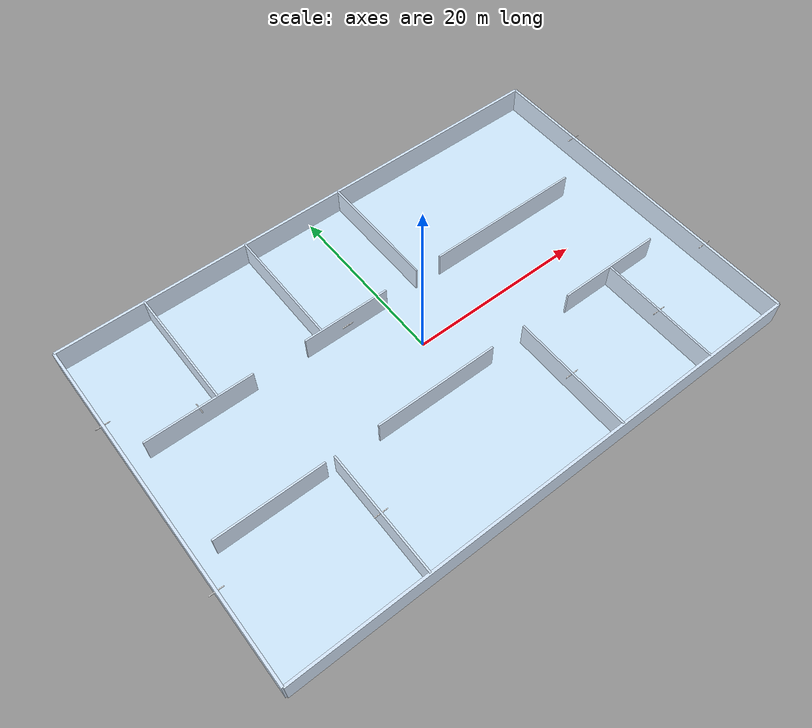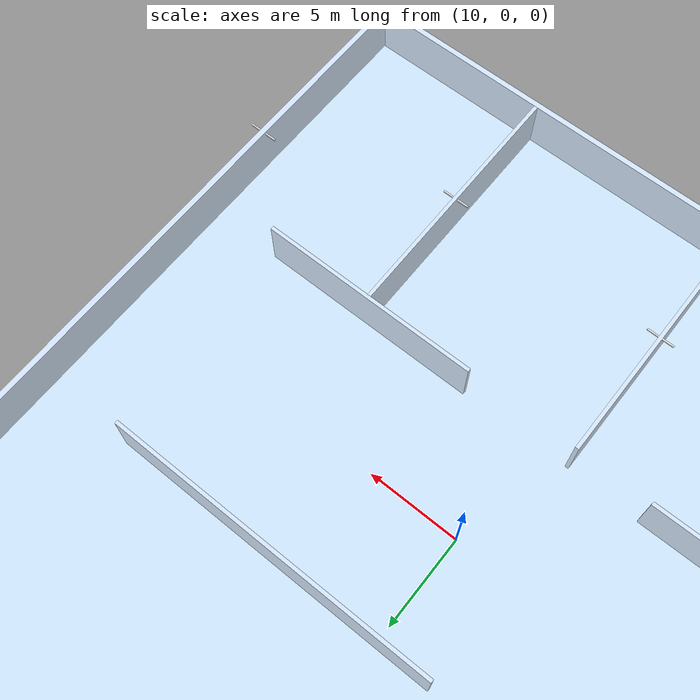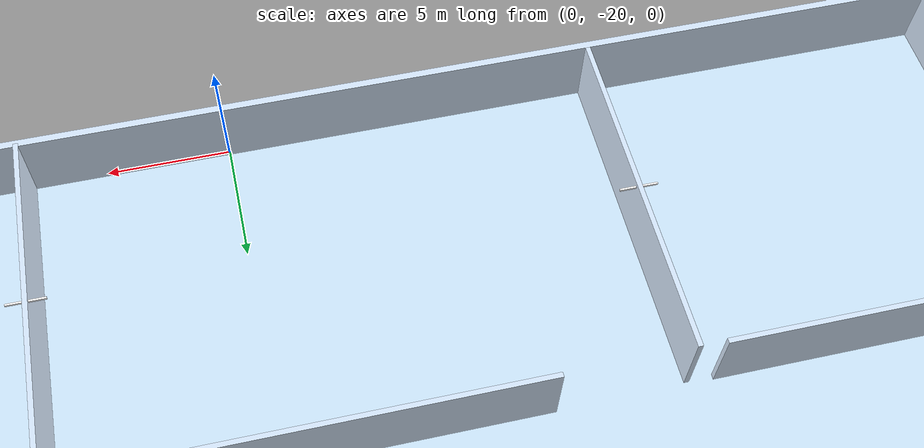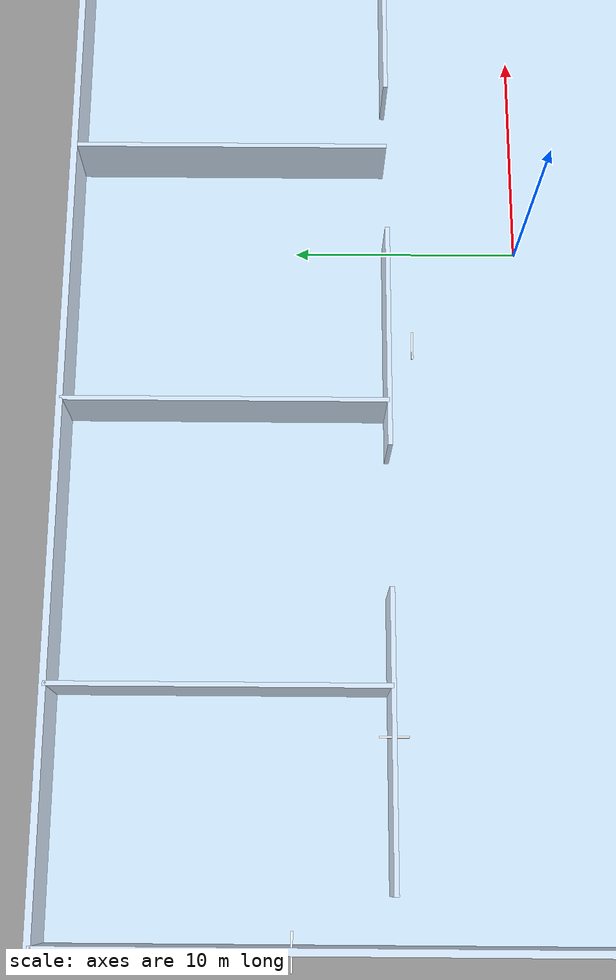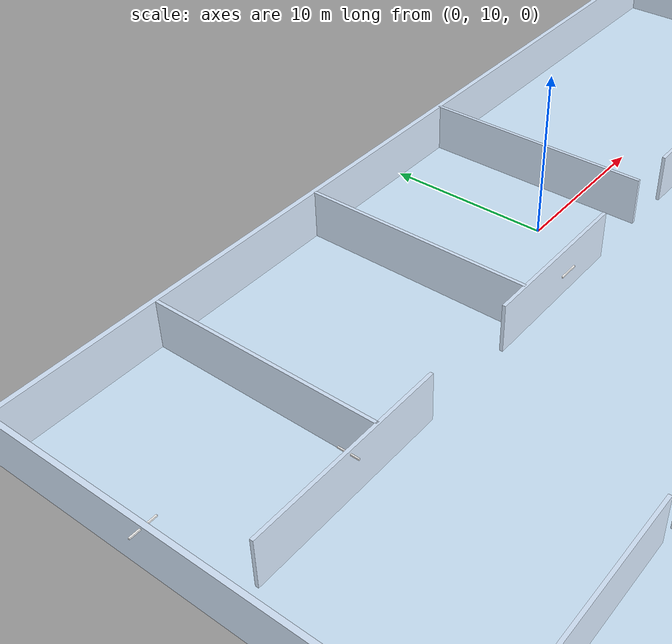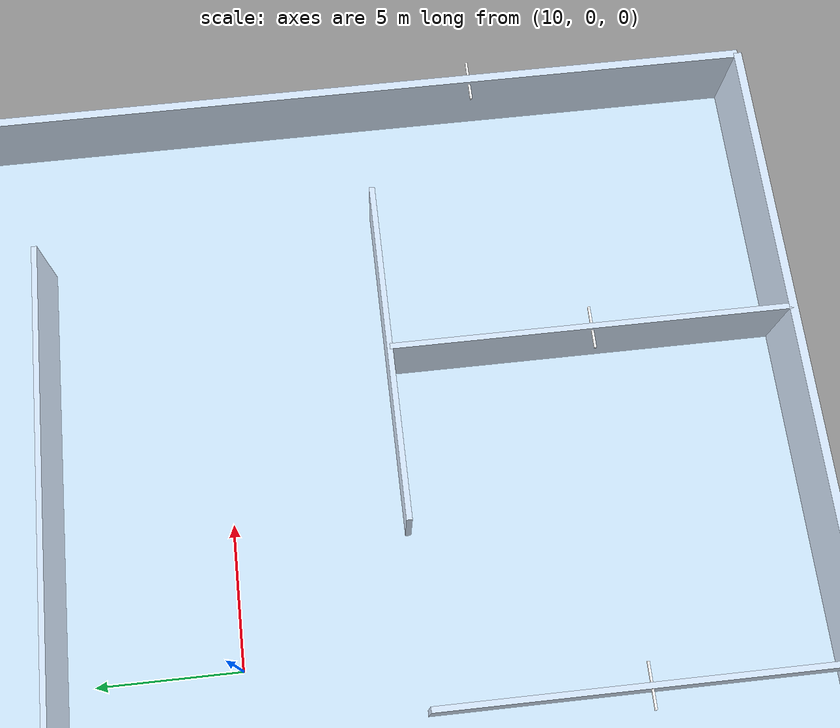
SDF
<sdf version="1.7">
 <world name="smart_hospital">
  <plugin filename="gz-sim-physics-system" name="gz::sim::systems::Physics"/>
  <plugin filename="gz-sim-user-commands-system" name="gz::sim::systems::UserCommands"/>
  <plugin filename="gz-sim-scene-broadcaster-system" name="gz::sim::systems::SceneBroadcaster"/>
  <plugin filename="gz-sim-sensors-system" name="gz::sim::systems::Sensors">
   <render_engine>ogre2</render_engine>
  </plugin>
  <plugin filename="gz-sim-imu-system" name="gz::sim::systems::Imu"/>
  <light name="sun_light" type="directional">
   <pose>0 0 20 0 0 0</pose>
   <diffuse>1 1 1 1</diffuse>
   <specular>0.2 0.2 0.2 1</specular>
   <direction>-0.5 0.1 -0.9</direction>
  </light>
  <model name="tube_light_1">
   <static>true</static>
   <pose>-5.5 5 2.8 0 0 0</pose>
   <link name="link">
    <visual name="tube_visual">
     <geometry><box><size>1.2 0.08 0.08</size></box></geometry>
     <material><ambient>1 1 1 1</ambient><diffuse>1 1 1 1</diffuse><emissive>1 1 1 1</emissive></material>
    </visual>
    <light name="tube_light" type="point">
     <diffuse>1 1 1 1</diffuse>
     <specular>0.2 0.2 0.2 1</specular>
     <attenuation>
      <range>8</range>
      <constant>0.5</constant>
      <linear>0.01</linear>
      <quadratic>0.001</quadratic>
     </attenuation>
     <cast_shadows>false</cast_shadows>
    </light>
   </link>
  </model>
  <model name="floor">
   <static>true</static>
   <link name="link">
    <collision name="collision"><geometry><box><size>60 40 0.1</size></box></geometry></collision>
    <visual name="visual">
     <geometry><box><size>60 40 0.1</size></box></geometry>
     <material>
      <ambient>0.78 0.88 0.96 1</ambient>
      <diffuse>0.82 0.92 1 1</diffuse>
      <specular>1 1 1 1</specular>
      <emissive>0.02 0.02 0.02 1</emissive>
     </material>
    </visual>
   </link>
  </model>
  <model name="top_wall">
   <static>true</static>
   <pose>0 20 1.5 0 0 0</pose>
   <link name="link">
    <collision name="collision"><geometry><box><size>60 0.3 3</size></box></geometry></collision>
    <visual name="visual">
     <geometry><box><size>60 0.3 3</size></box></geometry>
     <material><ambient>0.85 0.92 1 1</ambient><diffuse>0.85 0.92 1 1</diffuse></material>
    </visual>
   </link>
  </model>
  <model name="bottom_wall">
   <static>true</static>
   <pose>0 -20 1.5 0 0 0</pose>
   <link name="link">
    <collision name="collision"><geometry><box><size>60 0.3 3</size></box></geometry></collision>
    <visual name="visual">
     <geometry><box><size>60 0.3 3</size></box></geometry>
     <material><ambient>0.85 0.92 1 1</ambient><diffuse>0.85 0.92 1 1</diffuse></material>
    </visual>
   </link>
  </model>
  <model name="left_wall">
   <static>true</static>
   <pose>-30 0 1.5 0 0 1.57</pose>
   <link name="link">
    <collision name="collision"><geometry><box><size>40 0.3 3</size></box></geometry></collision>
    <visual name="visual">
     <geometry><box><size>40 0.3 3</size></box></geometry>
     <material><ambient>0.85 0.92 1 1</ambient><diffuse>0.85 0.92 1 1</diffuse></material>
    </visual>
   </link>
  </model>
  <model name="right_wall">
   <static>true</static>
   <pose>30 0 1.5 0 0 1.57</pose>
   <link name="link">
    <collision name="collision"><geometry><box><size>40 0.3 3</size></box></geometry></collision>
    <visual name="visual">
     <geometry><box><size>40 0.3 3</size></box></geometry>
     <material><ambient>0.85 0.92 1 1</ambient><diffuse>0.85 0.92 1 1</diffuse></material>
    </visual>
   </link>
  </model>
  <model name="corridor_top_left">
   <static>true</static>
   <pose>-22 6 1.5 0 0 0</pose>
   <link name="link">
    <collision name="collision"><geometry><box><size>12 0.2 3</size></box></geometry></collision>
    <visual name="visual">
     <geometry><box><size>12 0.2 3</size></box></geometry>
     <material><ambient>0.85 0.92 1 1</ambient><diffuse>0.85 0.92 1 1</diffuse></material>
    </visual>
   </link>
  </model>
  <model name="corridor_top_middle">
   <static>true</static>
   <pose>-5 6 1.5 0 0 0</pose>
   <link name="link">
    <collision name="collision"><geometry><box><size>10 0.2 3</size></box></geometry></collision>
    <visual name="visual">
     <geometry><box><size>10 0.2 3</size></box></geometry>
     <material><ambient>0.85 0.92 1 1</ambient><diffuse>0.85 0.92 1 1</diffuse></material>
    </visual>
   </link>
  </model>
  <model name="corridor_top_right">
   <static>true</static>
   <pose>16 6 1.5 0 0 0</pose>
   <link name="link">
    <collision name="collision"><geometry><box><size>18 0.2 3</size></box></geometry></collision>
    <visual name="visual">
     <geometry><box><size>18 0.2 3</size></box></geometry>
     <material><ambient>0.85 0.92 1 1</ambient><diffuse>0.85 0.92 1 1</diffuse></material>
    </visual>
   </link>
  </model>
  <model name="corridor_bottom_left">
   <static>true</static>
   <pose>-22 -6 1.5 0 0 0</pose>
   <link name="link">
    <collision name="collision"><geometry><box><size>12 0.2 3</size></box></geometry></collision>
    <visual name="visual">
     <geometry><box><size>12 0.2 3</size></box></geometry>
     <material><ambient>0.85 0.92 1 1</ambient><diffuse>0.85 0.92 1 1</diffuse></material>
    </visual>
   </link>
  </model>
  <model name="corridor_bottom_middle">
   <static>true</static>
   <pose>-3 -6 1.5 0 0 0</pose>
   <link name="link">
    <collision name="collision"><geometry><box><size>14 0.2 3</size></box></geometry></collision>
    <visual name="visual">
     <geometry><box><size>14 0.2 3</size></box></geometry>
     <material><ambient>0.85 0.92 1 1</ambient><diffuse>0.85 0.92 1 1</diffuse></material>
    </visual>
   </link>
  </model>
  <model name="corridor_bottom_right">
   <static>true</static>
   <pose>20 -6 1.5 0 0 0</pose>
   <link name="link">
    <collision name="collision"><geometry><box><size>12 0.2 3</size></box></geometry></collision>
    <visual name="visual">
     <geometry><box><size>12 0.2 3</size></box></geometry>
     <material><ambient>0.85 0.92 1 1</ambient><diffuse>0.85 0.92 1 1</diffuse></material>
    </visual>
   </link>
  </model>
  <model name="divider_1">
   <static>true</static>
   <pose>-20 13 1.5 0 0 1.57</pose>
   <link name="link">
    <collision name="collision"><geometry><box><size>14 0.2 3</size></box></geometry></collision>
    <visual name="visual">
     <geometry><box><size>14 0.2 3</size></box></geometry>
     <material><ambient>0.85 0.92 1 1</ambient><diffuse>0.85 0.92 1 1</diffuse></material>
    </visual>
   </link>
  </model>
  <model name="divider_2">
   <static>true</static>
   <pose>-8 13 1.5 0 0 1.57</pose>
   <link name="link">
    <collision name="collision"><geometry><box><size>14 0.2 3</size></box></geometry></collision>
    <visual name="visual">
     <geometry><box><size>14 0.2 3</size></box></geometry>
     <material><ambient>0.85 0.92 1 1</ambient><diffuse>0.85 0.92 1 1</diffuse></material>
    </visual>
   </link>
  </model>
  <model name="divider_3">
   <static>true</static>
   <pose>4 13 1.5 0 0 1.57</pose>
   <link name="link">
    <collision name="collision"><geometry><box><size>14 0.2 3</size></box></geometry></collision>
    <visual name="visual">
     <geometry><box><size>14 0.2 3</size></box></geometry>
     <material><ambient>0.85 0.92 1 1</ambient><diffuse>0.85 0.92 1 1</diffuse></material>
    </visual>
   </link>
  </model>
  <model name="right_divider_1">
   <static>true</static>
   <pose>20 -13 1.5 0 0 1.57</pose>
   <link name="link">
    <collision name="collision"><geometry><box><size>14 0.2 3</size></box></geometry></collision>
    <visual name="visual">
     <geometry><box><size>14 0.2 3</size></box></geometry>
     <material><ambient>0.85 0.92 1 1</ambient><diffuse>0.85 0.92 1 1</diffuse></material>
    </visual>
   </link>
  </model>
  <model name="right_divider_2">
   <static>true</static>
   <pose>8 -13 1.5 0 0 1.57</pose>
   <link name="link">
    <collision name="collision"><geometry><box><size>14 0.2 3</size></box></geometry></collision>
    <visual name="visual">
     <geometry><box><size>14 0.2 3</size></box></geometry>
     <material><ambient>0.85 0.92 1 1</ambient><diffuse>0.85 0.92 1 1</diffuse></material>
    </visual>
   </link>
  </model>
  <model name="right_divider_3">
   <static>true</static>
   <pose>-15 -13 1.5 0 0 1.57</pose>
   <link name="link">
    <collision name="collision"><geometry><box><size>14 0.2 3</size></box></geometry></collision>
    <visual name="visual">
     <geometry><box><size>14 0.2 3</size></box></geometry>
     <material><ambient>0.85 0.92 1 1</ambient><diffuse>0.85 0.92 1 1</diffuse></material>
    </visual>
   </link>
  </model>
  <model name="icu_light_1">
   <static>true</static>
   <pose>-20 13 2.8 0 0 0</pose>
   <link name="link">
    <visual name="visual">
     <geometry><box><size>0.08 1.2 0.08</size></box></geometry>
     <material><ambient>1 1 1 1</ambient><diffuse>1 1 1 1</diffuse><emissive>1 1 1 1</emissive></material>
    </visual>
    <light name="light_source" type="point">
     <diffuse>1 1 1 1</diffuse>
     <specular>0.3 0.3 0.3 1</specular>
     <attenuation>
      <range>10</range>
      <constant>0.5</constant>
      <linear>0.01</linear>
      <quadratic>0.001</quadratic>
     </attenuation>
     <cast_shadows>false</cast_shadows>
    </light>
   </link>
  </model>
  <model name="icu_light_2">
   <static>true</static>
   <pose>-22 6 2.8 0 0 0</pose>
   <link name="link">
    <visual name="visual">
     <geometry><box><size>0.08 1.2 0.08</size></box></geometry>
     <material><ambient>1 1 1 1</ambient><diffuse>1 1 1 1</diffuse><emissive>1 1 1 1</emissive></material>
    </visual>
    <light name="light_source" type="point">
     <diffuse>1 1 1 1</diffuse>
     <specular>0.3 0.3 0.3 1</specular>
     <attenuation>
      <range>10</range>
      <constant>0.5</constant>
      <linear>0.01</linear>
      <quadratic>0.001</quadratic>
     </attenuation>
     <cast_shadows>false</cast_shadows>
    </light>
   </link>
  </model>
  <model name="entrance_light_1">
   <static>true</static>
   <pose>-30 -10 2.8 0 0 1.57</pose>
   <link name="link">
    <visual name="tube_visual">
     <geometry><box><size>0.08 1.5 0.08</size></box></geometry>
     <material><ambient>1 1 1 1</ambient><diffuse>1 1 1 1</diffuse><emissive>1 1 1 1</emissive></material>
    </visual>
    <light name="tube_light" type="point">
     <diffuse>1 1 1 1</diffuse>
     <specular>0.2 0.2 0.2 1</specular>
     <attenuation>
      <range>12</range>
      <constant>0.4</constant>
      <linear>0.01</linear>
      <quadratic>0.001</quadratic>
     </attenuation>
     <cast_shadows>false</cast_shadows>
    </light>
   </link>
  </model>
  <model name="entrance_light_2">
   <static>true</static>
   <pose>-30 10 2.8 0 0 1.57</pose>
   <link name="link">
    <visual name="tube_visual">
     <geometry><box><size>0.08 1.5 0.08</size></box></geometry>
     <material><ambient>1 1 1 1</ambient><diffuse>1 1 1 1</diffuse><emissive>1 1 1 1</emissive></material>
    </visual>
    <light name="tube_light" type="point">
     <diffuse>1 1 1 1</diffuse>
     <specular>0.2 0.2 0.2 1</specular>
     <attenuation>
      <range>12</range>
      <constant>0.4</constant>
      <linear>0.01</linear>
      <quadratic>0.001</quadratic>
     </attenuation>
     <cast_shadows>false</cast_shadows>
    </light>
   </link>
  </model>
  <model name="top_light_1">
   <static>true</static>
   <pose>-10 20 2.8 0 0 0</pose>
   <link name="link">
    <visual name="tube_visual">
     <geometry><box><size>1.5 0.08 0.08</size></box></geometry>
     <material><ambient>1 1 1 1</ambient><diffuse>1 1 1 1</diffuse><emissive>1 1 1 1</emissive></material>
    </visual>
    <light name="light1" type="point">
     <diffuse>1 1 1 1</diffuse>
     <attenuation>
      <range>10</range>
      <constant>0.4</constant>
      <linear>0.01</linear>
      <quadratic>0.001</quadratic>
     </attenuation>
    </light>
   </link>
  </model>
  <model name="top_light_2">
   <static>true</static>
   <pose>-8 20 2.8 0 0 0</pose>
   <link name="link">
    <visual name="tube_visual">
     <geometry><box><size>1.5 0.08 0.08</size></box></geometry>
     <material><ambient>1 1 1 1</ambient><diffuse>1 1 1 1</diffuse><emissive>1 1 1 1</emissive></material>
    </visual>
    <light name="light2" type="point">
     <diffuse>1 1 1 1</diffuse>
     <attenuation>
      <range>10</range>
      <constant>0.4</constant>
      <linear>0.01</linear>
      <quadratic>0.001</quadratic>
     </attenuation>
    </light>
   </link>
  </model>
  <model name="top_light_3">
   <static>true</static>
   <pose>-4 20 2.8 0 0 0</pose>
   <link name="link">
    <visual name="tube_visual">
     <geometry><box><size>1.5 0.08 0.08</size></box></geometry>
     <material><ambient>1 1 1 1</ambient><diffuse>1 1 1 1</diffuse><emissive>1 1 1 1</emissive></material>
    </visual>
    <light name="light3" type="point">
     <diffuse>1 1 1 1</diffuse>
     <attenuation>
      <range>10</range>
      <constant>0.4</constant>
      <linear>0.01</linear>
      <quadratic>0.001</quadratic>
     </attenuation>
    </light>
   </link>
  </model>
  <model name="top_light_4">
   <static>true</static>
   <pose>0 20 2.8 0 0 0</pose>
   <link name="link">
    <visual name="tube_visual">
     <geometry><box><size>1.5 0.08 0.08</size></box></geometry>
     <material><ambient>1 1 1 1</ambient><diffuse>1 1 1 1</diffuse><emissive>1 1 1 1</emissive></material>
    </visual>
    <light name="light4" type="point">
     <diffuse>1 1 1 1</diffuse>
     <attenuation>
      <range>10</range>
      <constant>0.4</constant>
      <linear>0.01</linear>
      <quadratic>0.001</quadratic>
     </attenuation>
    </light>
   </link>
  </model>
  <model name="bottom_light_1">
   <static>true</static>
   <pose>-12 -20 2.8 0 0 0</pose>
   <link name="link">
    <visual name="tube_visual">
     <geometry><box><size>1.5 0.08 0.08</size></box></geometry>
     <material><ambient>1 1 1 1</ambient><diffuse>1 1 1 1</diffuse><emissive>1 1 1 1</emissive></material>
    </visual>
    <light name="light1" type="point">
     <diffuse>1 1 1 1</diffuse>
     <attenuation>
      <range>10</range>
      <constant>0.4</constant>
      <linear>0.01</linear>
      <quadratic>0.001</quadratic>
     </attenuation>
    </light>
   </link>
  </model>
  <model name="bottom_light_2">
   <static>true</static>
   <pose>-8 -20 2.8 0 0 0</pose>
   <link name="link">
    <visual name="tube_visual">
     <geometry><box><size>1.5 0.08 0.08</size></box></geometry>
     <material><ambient>1 1 1 1</ambient><diffuse>1 1 1 1</diffuse><emissive>1 1 1 1</emissive></material>
    </visual>
    <light name="light2" type="point">
     <diffuse>1 1 1 1</diffuse>
     <attenuation>
      <range>10</range>
      <constant>0.4</constant>
      <linear>0.01</linear>
      <quadratic>0.001</quadratic>
     </attenuation>
    </light>
   </link>
  </model>
  <model name="bottom_light_3">
   <static>true</static>
   <pose>-4 -20 2.8 0 0 0</pose>
   <link name="link">
    <visual name="tube_visual">
     <geometry><box><size>1.5 0.08 0.08</size></box></geometry>
     <material><ambient>1 1 1 1</ambient><diffuse>1 1 1 1</diffuse><emissive>1 1 1 1</emissive></material>
    </visual>
    <light name="light3" type="point">
     <diffuse>1 1 1 1</diffuse>
     <attenuation>
      <range>10</range>
      <constant>0.4</constant>
      <linear>0.01</linear>
      <quadratic>0.001</quadratic>
     </attenuation>
    </light>
   </link>
  </model>
  <model name="bottom_light_4">
   <static>true</static>
   <pose>0 -20 2.8 0 0 0</pose>
   <link name="link">
    <visual name="tube_visual">
     <geometry><box><size>1.5 0.08 0.08</size></box></geometry>
     <material><ambient>1 1 1 1</ambient><diffuse>1 1 1 1</diffuse><emissive>1 1 1 1</emissive></material>
    </visual>
    <light name="light4" type="point">
     <diffuse>1 1 1 1</diffuse>
     <attenuation>
      <range>10</range>
      <constant>0.4</constant>
      <linear>0.01</linear>
      <quadratic>0.001</quadratic>
     </attenuation>
    </light>
   </link>
  </model>
  <model name="room_light_right_1">
   <static>true</static>
   <pose>22 -6 2.8 0 0 0</pose>
   <link name="link">
    <visual name="visual">
     <geometry><box><size>1.5 0.08 0.08</size></box></geometry>
     <material><ambient>1 1 1 1</ambient><diffuse>1 1 1 1</diffuse><emissive>1 1 1 1</emissive></material>
    </visual>
    <light name="light" type="point">
     <diffuse>1 1 1 1</diffuse>
     <attenuation>
      <range>9</range>
      <constant>0.4</constant>
      <linear>0.01</linear>
      <quadratic>0.001</quadratic>
     </attenuation>
    </light>
   </link>
  </model>
  <model name="corridor_middle_light_1">
   <static>true</static>
   <pose>-6 -6 2.8 0 0 0</pose>
   <link name="link">
    <visual name="visual">
     <geometry><box><size>1.5 0.08 0.08</size></box></geometry>
     <material><ambient>1 1 1 1</ambient><diffuse>1 1 1 1</diffuse><emissive>1 1 1 1</emissive></material>
    </visual>
    <light name="light1" type="point">
     <diffuse>1 1 1 1</diffuse>
     <attenuation>
      <range>9</range>
      <constant>0.4</constant>
      <linear>0.01</linear>
      <quadratic>0.001</quadratic>
     </attenuation>
    </light>
   </link>
  </model>
  <model name="corridor_middle_light_2">
   <static>true</static>
   <pose>0 -6 2.8 0 0 0</pose>
   <link name="link">
    <visual name="visual">
     <geometry><box><size>1.5 0.08 0.08</size></box></geometry>
     <material><ambient>1 1 1 1</ambient><diffuse>1 1 1 1</diffuse><emissive>1 1 1 1</emissive></material>
    </visual>
    <light name="light2" type="point">
     <diffuse>1 1 1 1</diffuse>
     <attenuation>
      <range>9</range>
      <constant>0.4</constant>
      <linear>0.01</linear>
      <quadratic>0.001</quadratic>
     </attenuation>
    </light>
   </link>
  </model>
  <model name="corridor_right_light_1">
   <static>true</static>
   <pose>17 -6 2.8 0 0 0</pose>
   <link name="link">
    <visual name="visual">
     <geometry><box><size>1.5 0.08 0.08</size></box></geometry>
     <material><ambient>1 1 1 1</ambient><diffuse>1 1 1 1</diffuse><emissive>1 1 1 1</emissive></material>
    </visual>
    <light name="light3" type="point">
     <diffuse>1 1 1 1</diffuse>
     <attenuation>
      <range>9</range>
      <constant>0.4</constant>
      <linear>0.01</linear>
      <quadratic>0.001</quadratic>
     </attenuation>
    </light>
   </link>
  </model>
  <model name="corridor_right_light_2">
   <static>true</static>
   <pose>23 -6 2.8 0 0 0</pose>
   <link name="link">
    <visual name="visual">
     <geometry><box><size>1.5 0.08 0.08</size></box></geometry>
     <material><ambient>1 1 1 1</ambient><diffuse>1 1 1 1</diffuse><emissive>1 1 1 1</emissive></material>
    </visual>
    <light name="light4" type="point">
     <diffuse>1 1 1 1</diffuse>
     <attenuation>
      <range>9</range>
      <constant>0.4</constant>
      <linear>0.01</linear>
      <quadratic>0.001</quadratic>
     </attenuation>
    </light>
   </link>
  </model>
  <model name="divider_light_1">
   <static>true</static>
   <pose>20 -13 2.8 0 0 1.57</pose>
   <link name="link">
    <visual name="visual">
     <geometry><box><size>0.08 1.5 0.08</size></box></geometry>
     <material><ambient>1 1 1 1</ambient><diffuse>1 1 1 1</diffuse><emissive>1 1 1 1</emissive></material>
    </visual>
    <light name="light5" type="point">
     <diffuse>1 1 1 1</diffuse>
     <attenuation>
      <range>9</range>
      <constant>0.4</constant>
      <linear>0.01</linear>
      <quadratic>0.001</quadratic>
     </attenuation>
    </light>
   </link>
  </model>
  <model name="divider_light_2">
   <static>true</static>
   <pose>8 -13 2.8 0 0 1.57</pose>
   <link name="link">
    <visual name="visual">
     <geometry><box><size>0.08 1.5 0.08</size></box></geometry>
     <material><ambient>1 1 1 1</ambient><diffuse>1 1 1 1</diffuse><emissive>1 1 1 1</emissive></material>
    </visual>
    <light name="light6" type="point">
     <diffuse>1 1 1 1</diffuse>
     <attenuation>
      <range>9</range>
      <constant>0.4</constant>
      <linear>0.01</linear>
      <quadratic>0.001</quadratic>
     </attenuation>
    </light>
   </link>
  </model>
  <model name="divider_light_3">
   <static>true</static>
   <pose>-15 -13 2.8 0 0 1.57</pose>
   <link name="link">
    <visual name="visual">
     <geometry><box><size>0.08 1.5 0.08</size></box></geometry>
     <material><ambient>1 1 1 1</ambient><diffuse>1 1 1 1</diffuse><emissive>1 1 1 1</emissive></material>
    </visual>
    <light name="light1" type="point">
     <diffuse>1 1 1 1</diffuse>
     <attenuation>
      <range>9</range>
      <constant>0.4</constant>
      <linear>0.01</linear>
      <quadratic>0.001</quadratic>
     </attenuation>
     <cast_shadows>false</cast_shadows>
    </light>
   </link>
  </model>
  <model name="corridor_top_right_light">
   <static>true</static>
   <pose>16 6 2.8 0 0 0</pose>
   <link name="link">
    <visual name="visual">
     <geometry><box><size>1.5 0.08 0.08</size></box></geometry>
     <material><ambient>1 1 1 1</ambient><diffuse>1 1 1 1</diffuse><emissive>1 1 1 1</emissive></material>
    </visual>
    <light name="light2" type="point">
     <diffuse>1 1 1 1</diffuse>
     <attenuation>
      <range>9</range>
      <constant>0.4</constant>
      <linear>0.01</linear>
      <quadratic>0.001</quadratic>
     </attenuation>
     <cast_shadows>false</cast_shadows>
    </light>
   </link>
  </model>
  <model name="right_wall_light_1">
   <static>true</static>
   <pose>30 10 2.8 0 0 1.57</pose>
   <link name="link">
    <visual name="visual">
     <geometry><box><size>0.08 1.5 0.08</size></box></geometry>
     <material><ambient>1 1 1 1</ambient><diffuse>1 1 1 1</diffuse><emissive>1 1 1 1</emissive></material>
    </visual>
    <light name="light3" type="point">
     <diffuse>1 1 1 1</diffuse>
     <attenuation>
      <range>10</range>
      <constant>0.4</constant>
      <linear>0.01</linear>
      <quadratic>0.001</quadratic>
     </attenuation>
     <cast_shadows>false</cast_shadows>
    </light>
   </link>
  </model>
  <model name="right_wall_light_2">
   <static>true</static>
   <pose>30 -10 2.8 0 0 1.57</pose>
   <link name="link">
    <visual name="visual">
     <geometry><box><size>0.08 1.5 0.08</size></box></geometry>
     <material><ambient>1 1 1 1</ambient><diffuse>1 1 1 1</diffuse><emissive>1 1 1 1</emissive></material>
    </visual>
    <light name="light4" type="point">
     <diffuse>1 1 1 1</diffuse>
     <attenuation>
      <range>10</range>
      <constant>0.4</constant>
      <linear>0.01</linear>
      <quadratic>0.001</quadratic>
     </attenuation>
     <cast_shadows>false</cast_shadows>
    </light>
   </link>
  </model>
 </world>
</sdf>
